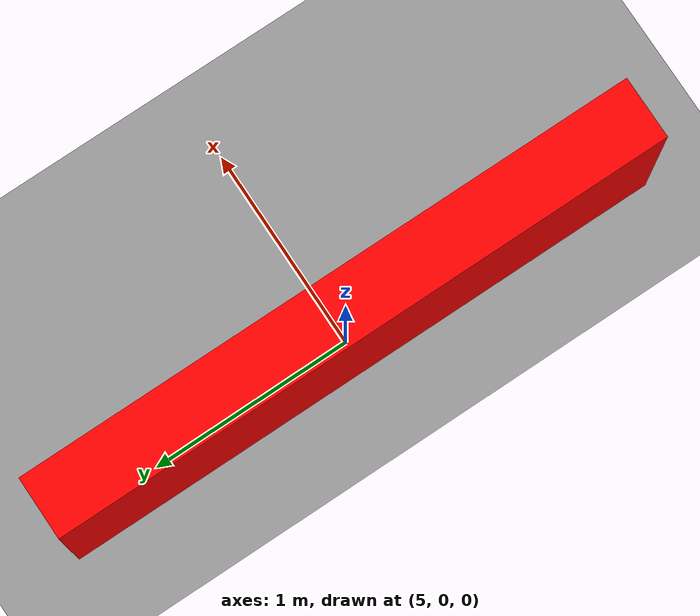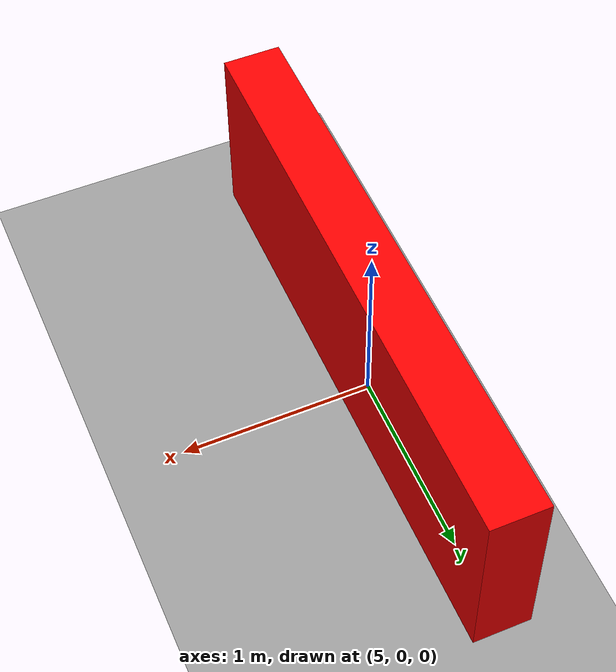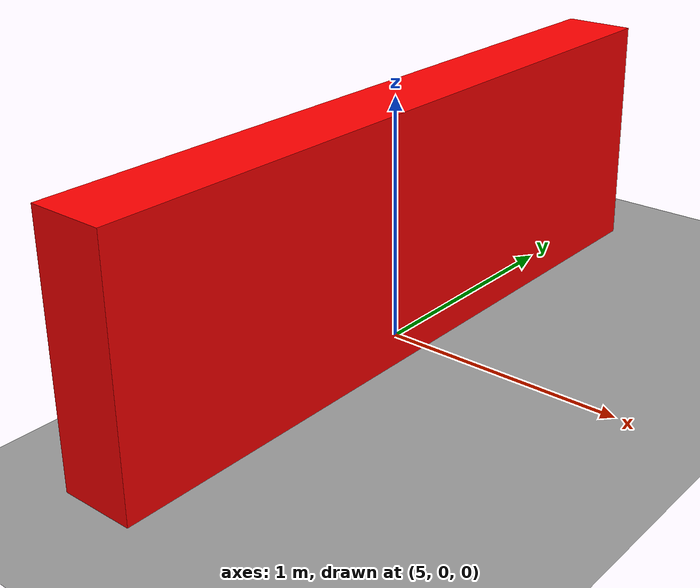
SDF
<?xml version="1.0"?>
<sdf version="1.11">
  <world name="ex04_simple_world">
    <!-- Базовая физика -->
    <physics name="1ms" type="ignored">
      <max_step_size>0.001</max_step_size>
      <real_time_factor>1.0</real_time_factor>
    </physics>

    <gravity>0 0 -9.8</gravity>

    <!-- Освещение -->
    <light type="directional" name="sun">
      <cast_shadows>true</cast_shadows>
      <pose>0 0 10 0 0 0</pose>
      <diffuse>0.8 0.8 0.8 1</diffuse>
      <specular>0.2 0.2 0.2 1</specular>
    </light>

    <!-- Пол -->
    <model name="ground_plane">
      <static>true</static>
      <link name="link">
        <collision name="collision">
          <geometry>
            <plane>
              <normal>0 0 1</normal>
            </plane>
          </geometry>
        </collision>
        <visual name="visual">
          <geometry>
            <plane>
              <normal>0 0 1</normal>
            </plane>
          </geometry>
          <material>
            <ambient>0.3 0.3 0.3 1</ambient>
            <diffuse>0.6 0.6 0.6 1</diffuse>
            <specular>0.1 0.1 0.1 1</specular>
          </material>
        </visual>
      </link>
    </model>

    <!-- Препятствие -->
    <model name="obstacle_wall">
      <pose>5 0 0.5 0 0 0</pose>
      <link name="link">
        <collision name="collision">
          <geometry>
            <box>
              <size>0.3 3.0 1.0</size>
            </box>
          </geometry>
        </collision>
        <visual name="visual">
          <geometry>
            <box>
              <size>0.3 3.0 1.0</size>
            </box>
          </geometry>
          <material>
            <ambient>1 0 0 1</ambient>
            <diffuse>1 0 0 1</diffuse>
          </material>
        </visual>
      </link>
    </model>
  </world>
</sdf>
